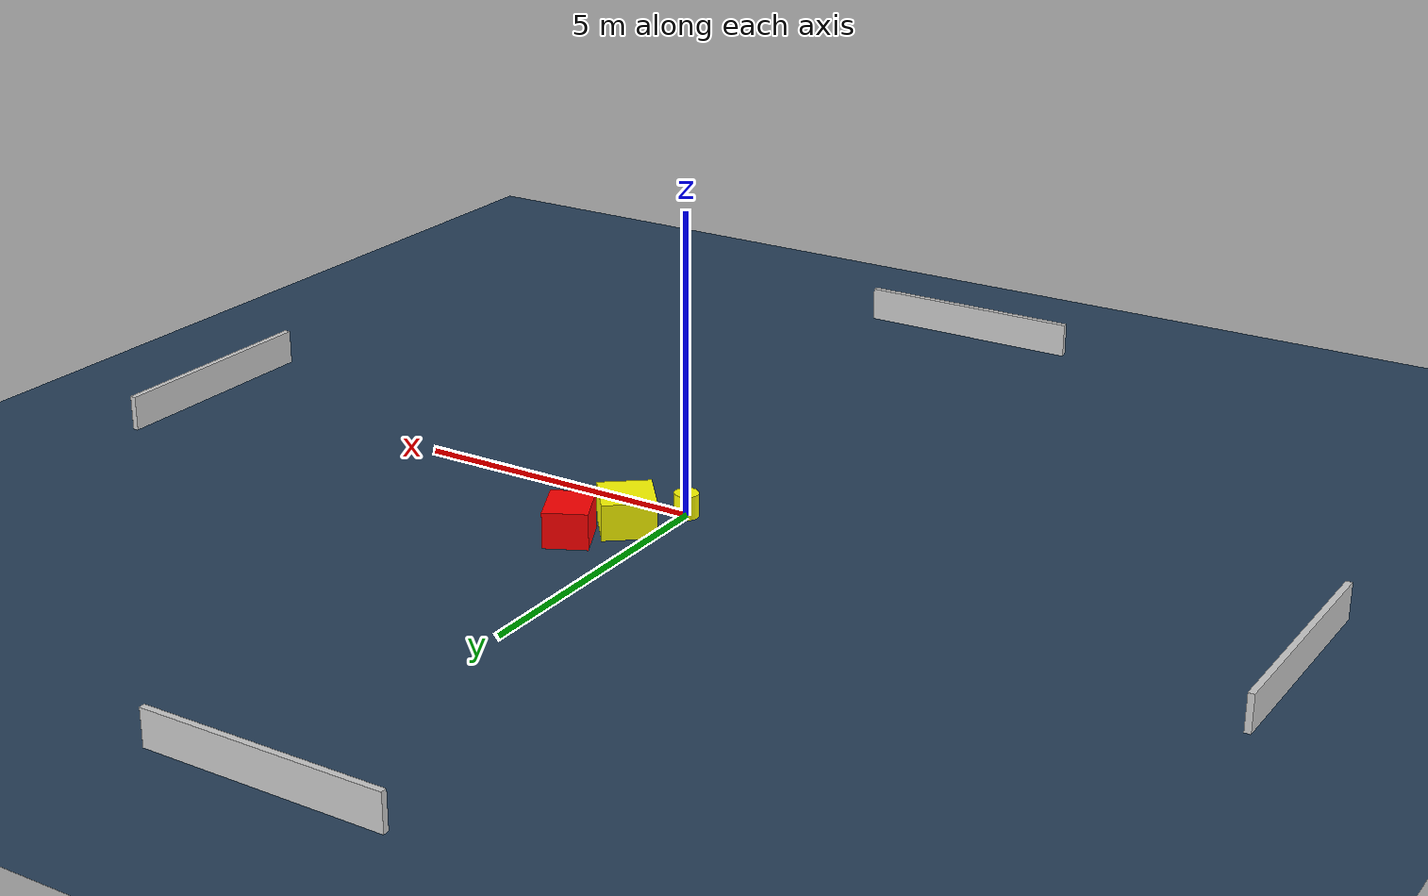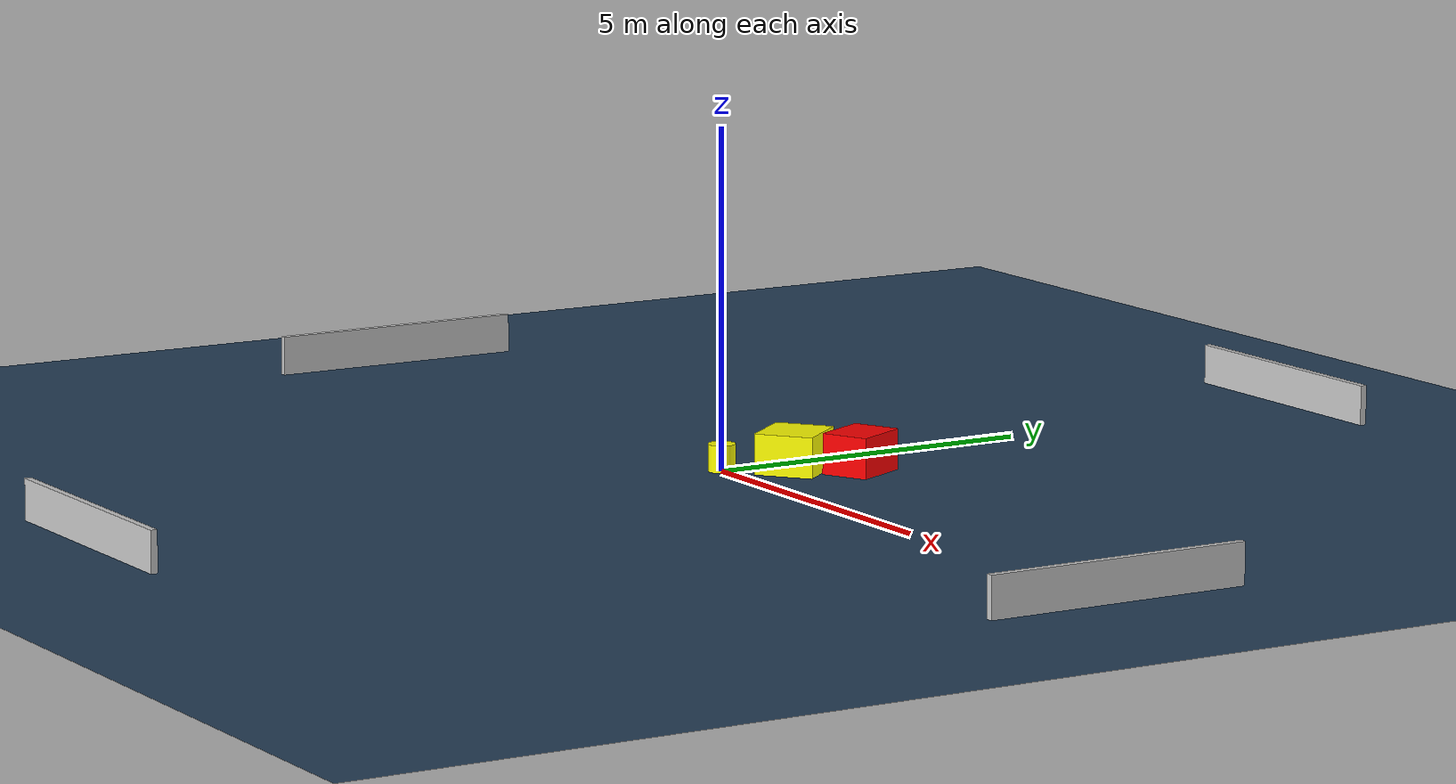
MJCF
<?xml version="1.0" ?>
<mujoco model="generated_environment">
  <option timestep="0.01" integrator="RK4" cone="elliptic"/>
  <default>
    <geom density="1"/>
  </default>
  <asset>
    <texture builtin="gradient" height="3072" name="skybox" rgb1="0.3 0.5 0.7" rgb2="0 0 0" type="skybox" width="512"/>
    <texture builtin="checker" height="300" name="groundplane" rgb1="0.2 0.3 0.4" rgb2="0.1 0.2 0.3" type="2d" width="300"/>
    <material name="groundplane" reflectance="0.2" texrepeat="5 5" texture="groundplane"/>
  </asset>
  <worldbody>
    <light dir="0 0 -1" directional="true" pos="0 0 1.5"/>
    <geom condim="3" friction="0.5 0.005 0.001" material="groundplane" name="floor" pos="0 0 0" size="0 0 0.05" type="plane"/>
    <body name="walls">
      <geom name="wall_1" condim="4" pos="-10.0 0.0 0.3" rgba="0.800000011920929 0.800000011920929 0.800000011920929 1.0" size="0.05 2.0 0.3" type="box"/>
      <geom name="wall_2" condim="4" pos="10.0 0.0 0.3" rgba="0.800000011920929 0.800000011920929 0.800000011920929 1.0" size="0.05 2.0 0.3" type="box"/>
      <geom name="wall_3" condim="4" pos="0.0 -10.0 0.3" rgba="0.800000011920929 0.800000011920929 0.800000011920929 1.0" size="2.0 0.05 0.3" type="box"/>
      <geom name="wall_4" condim="4" pos="0.0 10.0 0.3" rgba="0.800000011920929 0.800000011920929 0.800000011920929 1.0" size="2.0 0.05 0.3" type="box"/>
    </body>
    <body name="robot">
      <joint name="joint_x" type="slide" pos="0 0 0" axis="1 0 0"/>
      <joint name="joint_y" type="slide" pos="0 0 0" axis="0 1 0"/>
      <geom name="robot" type="cylinder" pos="0.0 0.0 0.2" size="0.2 0.2 0.0" mass="5.0" friction="1.0 0.005 0.0001" condim="4" rgba="1.0 1.0 0.0 1.0"/>
    </body>
    <body name="obstacle_1_movable">
      <geom name="obstacle_1_movable" condim="4" pos="0.5424762962164376 0.8891340042347903 0.3" euler="0 0 128.75152715844337" friction="0.0 0.005 0.001" rgba="1.0 1.0 0.0 1.0" size="0.46671922327730403 0.4387445955955756 0.3" type="box" mass="0.1"/>
      <joint type="free"/>
    </body>
    <body name="obstacle_2_static">
      <geom name="obstacle_2_static" condim="4" pos="1.0907535055561586 1.674767103500912 0.3" euler="0 0 206.23466543050282" friction="0.0 0.005 0.001" rgba="1.0 0.0 0.0 1.0" size="0.36194441152456813 0.4497143625949014 0.3" type="box"/>
    </body>
  </worldbody>
  <actuator>
    <motor name="actuator_x" joint="joint_x" gear="1" ctrlrange="-1 1"/>
    <motor name="actuator_y" joint="joint_y" gear="1" ctrlrange="-1 1"/>
  </actuator>
</mujoco>
